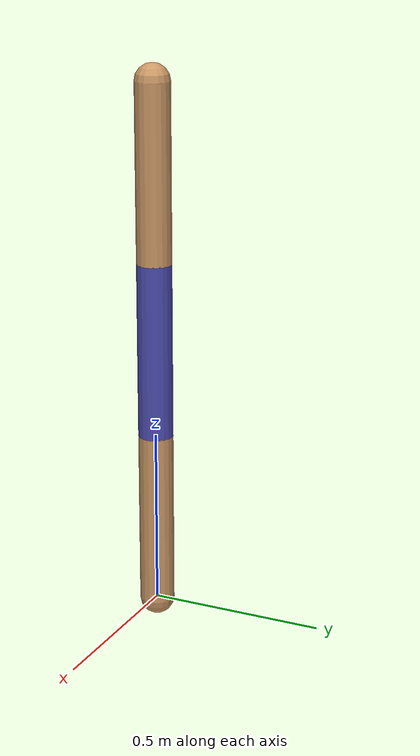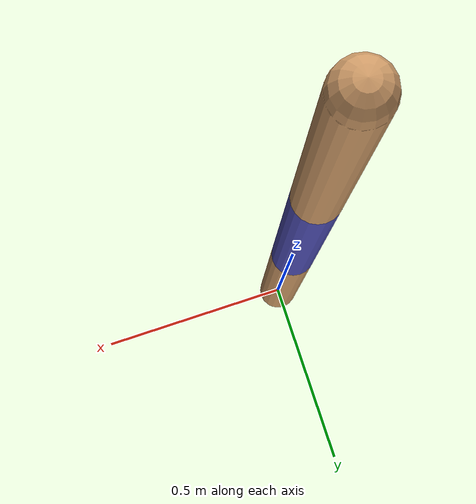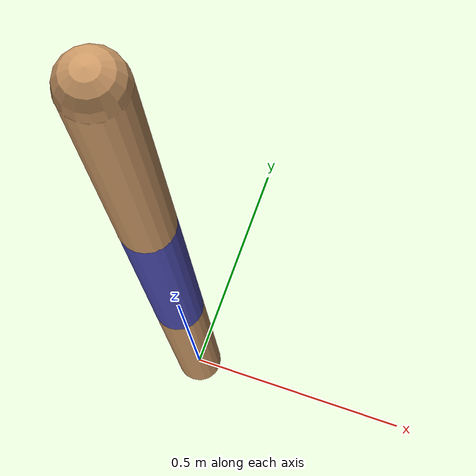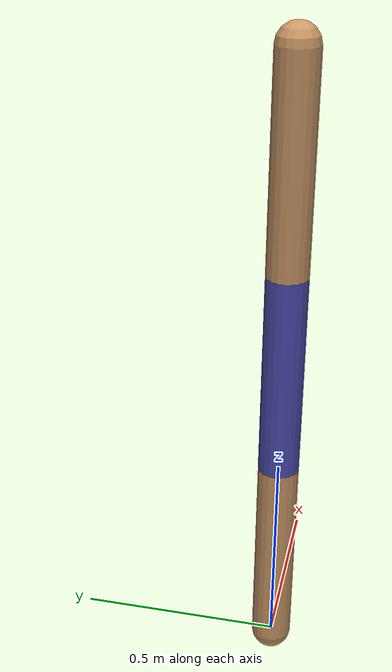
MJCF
<mujoco model="arm2joints">
    <compiler inertiafromgeom='true' angle='degree' coordinate="global"/>
    <default>
        <geom rgba=".8 .6 .4 1"/>
    </default>

    <worldbody>
        <light pos="0 1 1" dir="0 0 1" diffuse="1 1 1"/>
        <body>
            <geom name="link1" type="capsule" fromto="0 0 0 0 0 0.5" size="0.05"/>
            <joint name="joint01" type="hinge" pos="0 0 0"/>
            <body>
                <geom name="link2" type="capsule" fromto="0 0 0.5  0 0 1.0" size="0.05" rgba="0.3 0.3 0.7 1"/>
                <joint name="joint12" type="hinge" pos="0 0 0.5" axis="0 1 0"/>
                <body>
                    <geom name="link3" type="capsule" fromto="0 0 1.0  0 0 1.5" size="0.05"/>
                    <joint name="joint23" type="hinge" pos="0 0 1.0" axis="0 1 0"/>
                </body>
            </body>
        </body>
    </worldbody>

</mujoco>
